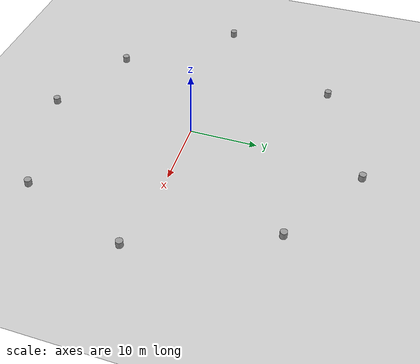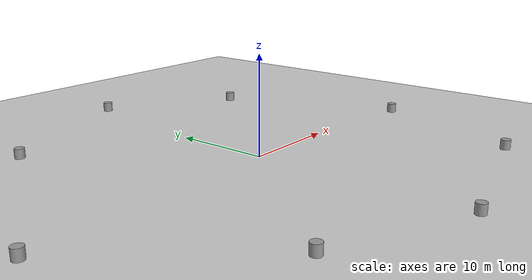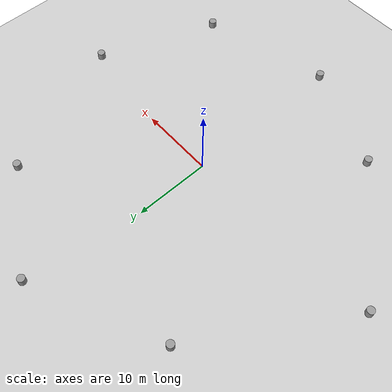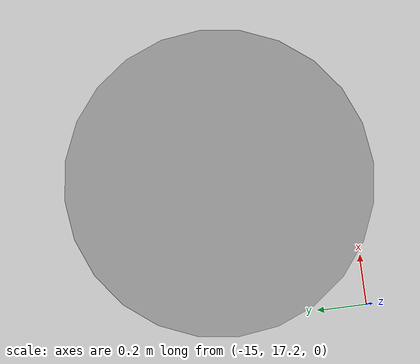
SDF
<sdf version="1.6">
 <world name="default">
  <light name="sun" type="directional">
   <pose>0 0 10 0 -0 0</pose>
   <diffuse>0.8 0.8 0.8 1</diffuse>
   <specular>0.1 0.1 0.1 1</specular>
   <attenuation>
    <range>1000</range>
    <constant>0.9</constant>
    <linear>0.01</linear>
    <quadratic>0.001</quadratic>
   </attenuation>
   <direction>-0.5 0.5 -1</direction>
  </light>
  <model name="ground_plane">
   <static>1</static>
   <link name="link">
    <collision name="collision">
     <geometry><plane><normal>0 0 1</normal><size>100 100</size></plane></geometry>
     <surface><friction><ode><mu>100</mu><mu2>50</mu2></ode></friction></surface>
    </collision>
    <visual name="visual">
     <cast_shadows>0</cast_shadows>
     <geometry><plane><normal>0 0 1</normal><size>100 100</size></plane></geometry>
     <material>
      <script><uri>file://media/materials/scripts/gazebo.material</uri><name>Gazebo/Grey</name></script>
     </material>
    </visual>
   </link>
  </model>
  <gravity>0 0 -9.8</gravity>
  <magnetic_field>6e-06 2.3e-05 -4.2e-05</magnetic_field>
  <atmosphere type="adiabatic"/>
  <physics name="default_physics" default="0" type="ode">
   <max_step_size>0.001</max_step_size>
   <real_time_factor>0</real_time_factor>
   <real_time_update_rate>1000</real_time_update_rate>
  </physics>
  <scene><ambient>0.4 0.4 0.4 1</ambient><background>0.7 0.7 0.7 1</background><shadows>1</shadows></scene>
  <spherical_coordinates>
   <surface_model>EARTH_WGS84</surface_model>
   <latitude_deg>0</latitude_deg>
   <longitude_deg>0</longitude_deg>
   <elevation>0</elevation>
   <heading_deg>0</heading_deg>
  </spherical_coordinates>
  <model name="unit_cylinder_0_0">
   <pose>-14.5572 17.7365 0.499998 3e-06 -4e-06 0</pose>
   <link name="link">
    <inertial>
     <mass>1</mass>
     <inertia><ixx>0.145833</ixx><ixy>0</ixy><ixz>0</ixz><iyy>0.145833</iyy><iyz>0</iyz><izz>0.125</izz></inertia>
    </inertial>
    <collision name="collision">
     <geometry><cylinder><radius>0.5</radius><length>1</length></cylinder></geometry>
    </collision>
    <visual name="visual">
     <geometry><cylinder><radius>0.5</radius><length>1</length></cylinder></geometry>
     <material>
      <script><name>Gazebo/Grey</name><uri>file://media/materials/scripts/gazebo.material</uri></script>
     </material>
    </visual>
   </link>
  </model>
  <model name="unit_cylinder_0_1">
   <pose>-13.4552 -15.8661 0.499992 -3e-06 4e-06 0</pose>
   <link name="link">
    <inertial>
     <mass>1</mass>
     <inertia><ixx>0.145833</ixx><ixy>0</ixy><ixz>0</ixz><iyy>0.145833</iyy><iyz>0</iyz><izz>0.125</izz></inertia>
    </inertial>
    <collision name="collision">
     <geometry><cylinder><radius>0.5</radius><length>1</length></cylinder></geometry>
    </collision>
    <visual name="visual">
     <geometry><cylinder><radius>0.5</radius><length>1</length></cylinder></geometry>
     <material>
      <script><name>Gazebo/Grey</name><uri>file://media/materials/scripts/gazebo.material</uri></script>
     </material>
    </visual>
   </link>
  </model>
  <model name="unit_cylinder_0_2">
   <pose>17.1958 -17.5847 0.499998 3e-06 -4e-06 0</pose>
   <link name="link">
    <inertial>
     <mass>1</mass>
     <inertia><ixx>0.145833</ixx><ixy>0</ixy><ixz>0</ixz><iyy>0.145833</iyy><iyz>0</iyz><izz>0.125</izz></inertia>
    </inertial>
    <collision name="collision">
     <geometry><cylinder><radius>0.5</radius><length>1</length></cylinder></geometry>
    </collision>
    <visual name="visual">
     <geometry><cylinder><radius>0.5</radius><length>1</length></cylinder></geometry>
     <material>
      <script><name>Gazebo/Grey</name><uri>file://media/materials/scripts/gazebo.material</uri></script>
     </material>
    </visual>
   </link>
  </model>
  <model name="unit_cylinder_0_3">
   <pose>15.3101 17.4102 0.499992 -3e-06 -4e-06 -0</pose>
   <link name="link">
    <inertial>
     <mass>1</mass>
     <inertia><ixx>0.145833</ixx><ixy>0</ixy><ixz>0</ixz><iyy>0.145833</iyy><iyz>0</iyz><izz>0.125</izz></inertia>
    </inertial>
    <collision name="collision">
     <geometry><cylinder><radius>0.5</radius><length>1</length></cylinder></geometry>
    </collision>
    <visual name="visual">
     <geometry><cylinder><radius>0.5</radius><length>1</length></cylinder></geometry>
     <material>
      <script><name>Gazebo/Grey</name><uri>file://media/materials/scripts/gazebo.material</uri></script>
     </material>
    </visual>
   </link>
  </model>
  <model name="unit_cylinder_0_4">
   <pose>-26.2333 -0.867797 0.499993 -3e-06 -3e-06 0</pose>
   <link name="link">
    <inertial>
     <mass>1</mass>
     <inertia><ixx>0.145833</ixx><ixy>0</ixy><ixz>0</ixz><iyy>0.145833</iyy><iyz>0</iyz><izz>0.125</izz></inertia>
    </inertial>
    <collision name="collision">
     <geometry><cylinder><radius>0.5</radius><length>1</length></cylinder></geometry>
    </collision>
    <visual name="visual">
     <geometry><cylinder><radius>0.5</radius><length>1</length></cylinder></geometry>
     <material>
      <script><name>Gazebo/Grey</name><uri>file://media/materials/scripts/gazebo.material</uri></script>
     </material>
    </visual>
   </link>
  </model>
  <model name="unit_cylinder_0_5">
   <pose>2.09023 25.4299 0.499997 3e-06 4e-06 -0</pose>
   <link name="link">
    <inertial>
     <mass>1</mass>
     <inertia><ixx>0.145833</ixx><ixy>0</ixy><ixz>0</ixz><iyy>0.145833</iyy><iyz>0</iyz><izz>0.125</izz></inertia>
    </inertial>
    <collision name="collision">
     <geometry><cylinder><radius>0.5</radius><length>1</length></cylinder></geometry>
    </collision>
    <visual name="visual">
     <geometry><cylinder><radius>0.5</radius><length>1</length></cylinder></geometry>
     <material>
      <script><name>Gazebo/Grey</name><uri>file://media/materials/scripts/gazebo.material</uri></script>
     </material>
    </visual>
   </link>
  </model>
  <model name="unit_cylinder_0_6">
   <pose>23.1031 -1.67545 0.499993 -3e-06 -4e-06 -0</pose>
   <link name="link">
    <inertial>
     <mass>1</mass>
     <inertia><ixx>0.145833</ixx><ixy>0</ixy><ixz>0</ixz><iyy>0.145833</iyy><iyz>0</iyz><izz>0.125</izz></inertia>
    </inertial>
    <collision name="collision">
     <geometry><cylinder><radius>0.5</radius><length>1</length></cylinder></geometry>
    </collision>
    <visual name="visual">
     <geometry><cylinder><radius>0.5</radius><length>1</length></cylinder></geometry>
     <material>
      <script><name>Gazebo/Grey</name><uri>file://media/materials/scripts/gazebo.material</uri></script>
     </material>
    </visual>
   </link>
  </model>
  <model name="unit_cylinder_0_7">
   <pose>0.021208 -21.865 0.499997 3e-06 4e-06 -0</pose>
   <link name="link">
    <inertial>
     <mass>1</mass>
     <inertia><ixx>0.145833</ixx><ixy>0</ixy><ixz>0</ixz><iyy>0.145833</iyy><iyz>0</iyz><izz>0.125</izz></inertia>
    </inertial>
    <collision name="collision">
     <geometry><cylinder><radius>0.5</radius><length>1</length></cylinder></geometry>
    </collision>
    <visual name="visual">
     <geometry><cylinder><radius>0.5</radius><length>1</length></cylinder></geometry>
     <material>
      <script><name>Gazebo/Grey</name><uri>file://media/materials/scripts/gazebo.material</uri></script>
     </material>
    </visual>
   </link>
  </model>
 </world>
</sdf>
